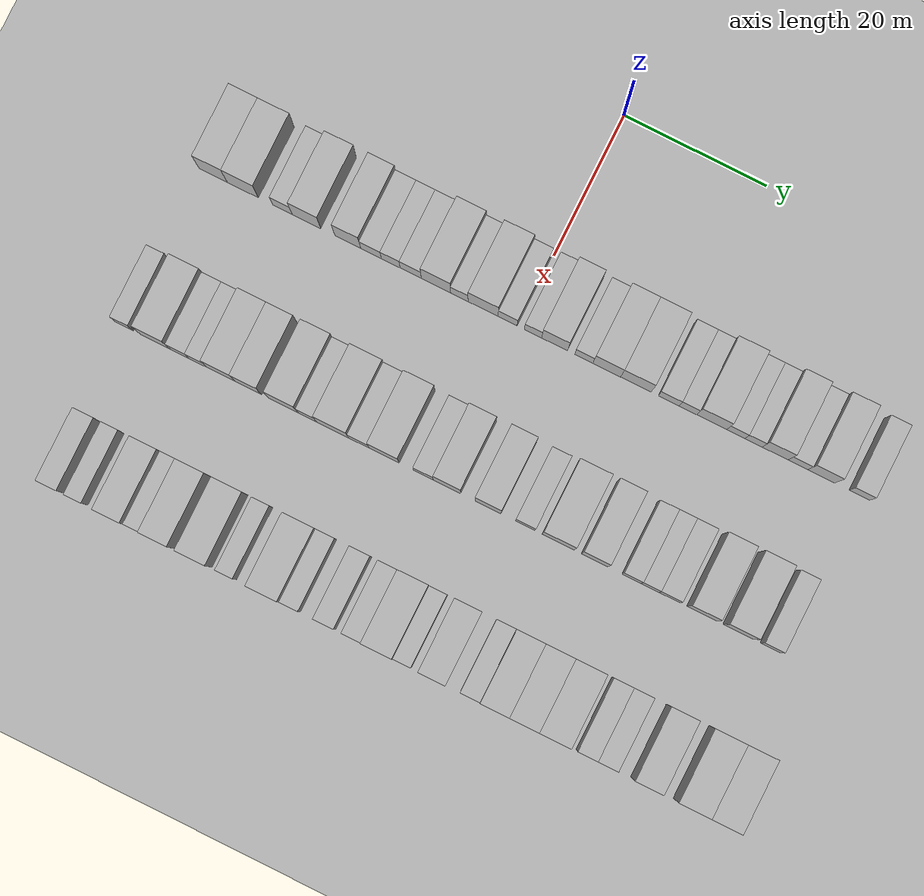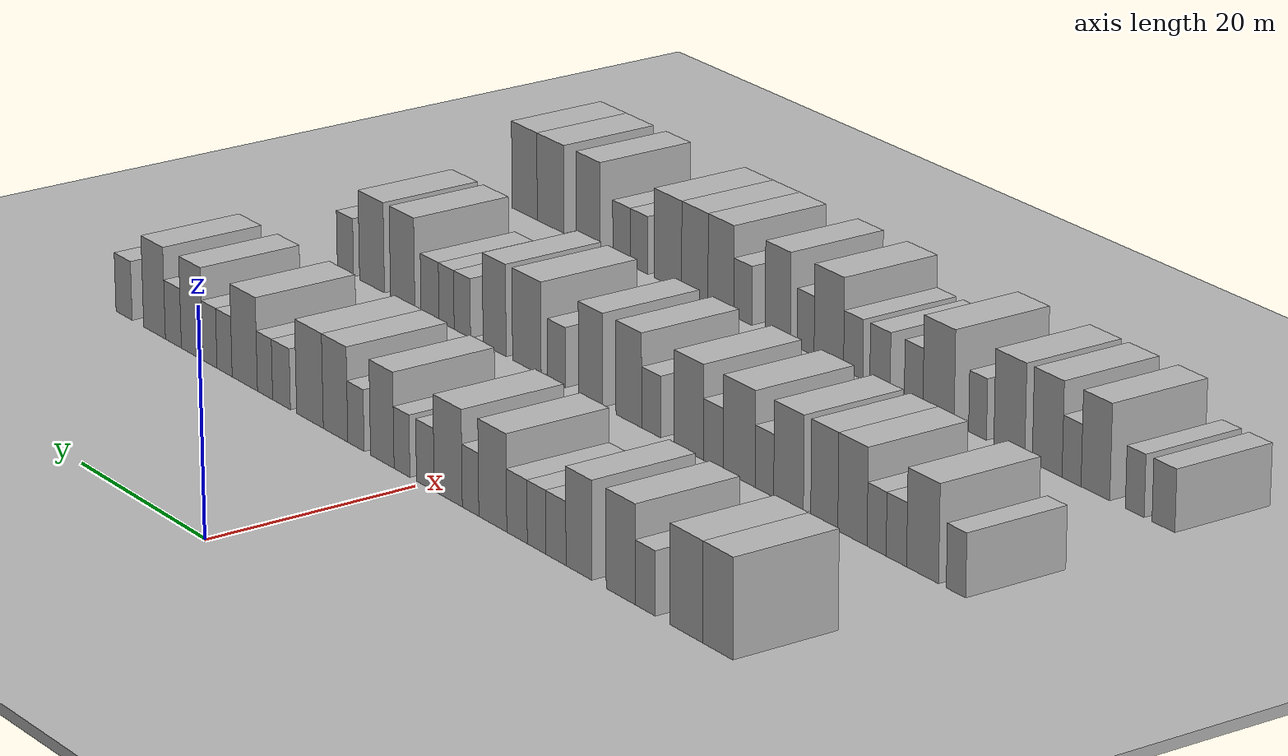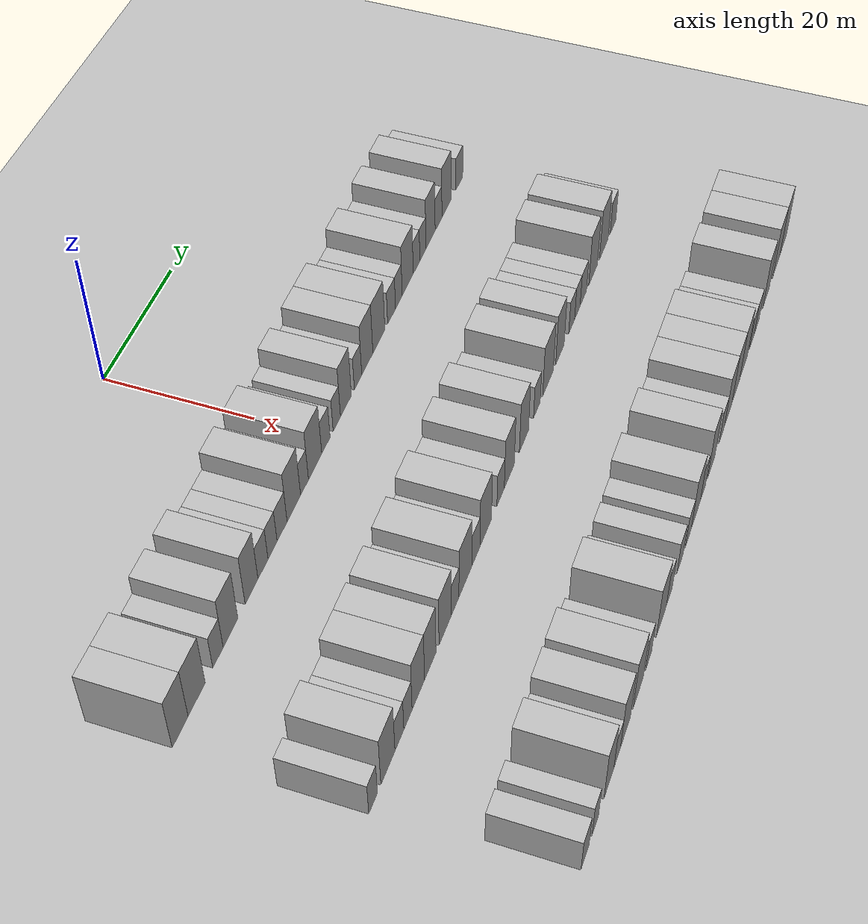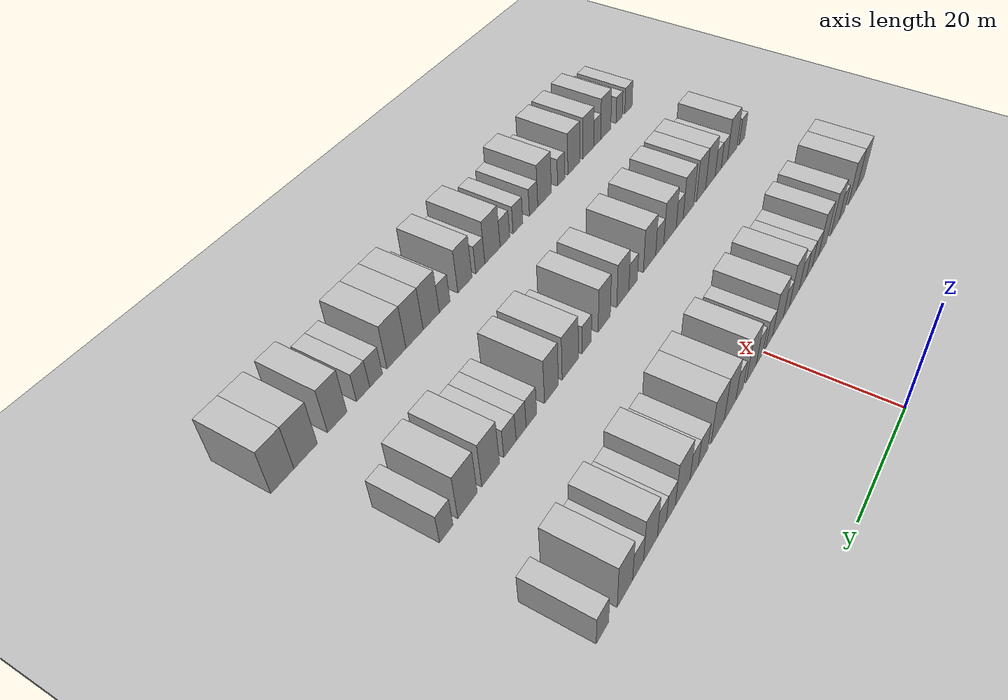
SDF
<sdf version="1.6">
 <world name="default">
  <include><name>ground_plane_1</name><uri>model://HANNAS_ground_plane</uri></include>
  <include>
   <name>ground_plane_2</name>
   <uri>model://HANNAS_ground_plane</uri>
   <pose>100 0 0  0 0 0</pose>
  </include>
  <model name="building_45">
   <static>1</static>
   <pose>25.0000 -42.8635 0 0.000000 0.000000 0.000000</pose>
   <link name="link">
    <pose>0 0 4.50 0 0 0</pose>
    <collision name="collision"><geometry><box><size>10.0000 3.9798 9.0000</size></box></geometry></collision>
    <visual name="visual">
     <cast_shadows>0</cast_shadows>
     <geometry><box><size>10.0000 3.9798 9.0000</size></box></geometry>
     <material>
      <script>
       <uri>model://HANNAS_wall/materials/scripts</uri>
       <uri>model://HANNAS_wall/materials/textures</uri>
       <name>vrc/HANNAS_wall</name>
      </script>
     </material>
    </visual>
   </link>
  </model>
  <model name="building_46">
   <static>1</static>
   <pose>25.0000 -38.6857 0 0.000000 0.000000 0.000000</pose>
   <link name="link">
    <pose>0 0 4.50 0 0 0</pose>
    <collision name="collision"><geometry><box><size>10.0000 4.3758 9.0000</size></box></geometry></collision>
    <visual name="visual">
     <cast_shadows>0</cast_shadows>
     <geometry><box><size>10.0000 4.3758 9.0000</size></box></geometry>
     <material>
      <script>
       <uri>model://HANNAS_wall/materials/scripts</uri>
       <uri>model://HANNAS_wall/materials/textures</uri>
       <name>vrc/HANNAS_wall</name>
      </script>
     </material>
    </visual>
   </link>
  </model>
  <model name="building_47">
   <static>1</static>
   <pose>25.0000 -33.1156 0 0.000000 0.000000 0.000000</pose>
   <link name="link">
    <pose>0 0 3.00 0 0 0</pose>
    <collision name="collision"><geometry><box><size>10.0000 2.7645 6.0000</size></box></geometry></collision>
    <visual name="visual">
     <cast_shadows>0</cast_shadows>
     <geometry><box><size>10.0000 2.7645 6.0000</size></box></geometry>
     <material>
      <script>
       <uri>model://HANNAS_wall/materials/scripts</uri>
       <uri>model://HANNAS_wall/materials/textures</uri>
       <name>vrc/HANNAS_wall</name>
      </script>
     </material>
    </visual>
   </link>
  </model>
  <model name="building_48">
   <static>1</static>
   <pose>25.0000 -29.7334 0 0.000000 0.000000 0.000000</pose>
   <link name="link">
    <pose>0 0 4.50 0 0 0</pose>
    <collision name="collision"><geometry><box><size>10.0000 3.9999 9.0000</size></box></geometry></collision>
    <visual name="visual">
     <cast_shadows>0</cast_shadows>
     <geometry><box><size>10.0000 3.9999 9.0000</size></box></geometry>
     <material>
      <script>
       <uri>model://HANNAS_wall/materials/scripts</uri>
       <uri>model://HANNAS_wall/materials/textures</uri>
       <name>vrc/HANNAS_wall</name>
      </script>
     </material>
    </visual>
   </link>
  </model>
  <model name="building_49">
   <static>1</static>
   <pose>25.0000 -23.9194 0 0.000000 0.000000 0.000000</pose>
   <link name="link">
    <pose>0 0 4.50 0 0 0</pose>
    <collision name="collision"><geometry><box><size>10.0000 3.6281 9.0000</size></box></geometry></collision>
    <visual name="visual">
     <cast_shadows>0</cast_shadows>
     <geometry><box><size>10.0000 3.6281 9.0000</size></box></geometry>
     <material>
      <script>
       <uri>model://HANNAS_wall/materials/scripts</uri>
       <uri>model://HANNAS_wall/materials/textures</uri>
       <name>vrc/HANNAS_wall</name>
      </script>
     </material>
    </visual>
   </link>
  </model>
  <model name="building_50">
   <static>1</static>
   <pose>25.0000 -20.6621 0 0.000000 0.000000 0.000000</pose>
   <link name="link">
    <pose>0 0 3.00 0 0 0</pose>
    <collision name="collision"><geometry><box><size>10.0000 2.8865 6.0000</size></box></geometry></collision>
    <visual name="visual">
     <cast_shadows>0</cast_shadows>
     <geometry><box><size>10.0000 2.8865 6.0000</size></box></geometry>
     <material>
      <script>
       <uri>model://HANNAS_wall/materials/scripts</uri>
       <uri>model://HANNAS_wall/materials/textures</uri>
       <name>vrc/HANNAS_wall</name>
      </script>
     </material>
    </visual>
   </link>
  </model>
  <model name="building_51">
   <static>1</static>
   <pose>25.0000 -17.8971 0 0.000000 0.000000 0.000000</pose>
   <link name="link">
    <pose>0 0 3.00 0 0 0</pose>
    <collision name="collision"><geometry><box><size>10.0000 2.6434 6.0000</size></box></geometry></collision>
    <visual name="visual">
     <cast_shadows>0</cast_shadows>
     <geometry><box><size>10.0000 2.6434 6.0000</size></box></geometry>
     <material>
      <script>
       <uri>model://HANNAS_wall/materials/scripts</uri>
       <uri>model://HANNAS_wall/materials/textures</uri>
       <name>vrc/HANNAS_wall</name>
      </script>
     </material>
    </visual>
   </link>
  </model>
  <model name="building_52">
   <static>1</static>
   <pose>25.0000 -15.0894 0 0.000000 0.000000 0.000000</pose>
   <link name="link">
    <pose>0 0 3.00 0 0 0</pose>
    <collision name="collision"><geometry><box><size>10.0000 2.9720 6.0000</size></box></geometry></collision>
    <visual name="visual">
     <cast_shadows>0</cast_shadows>
     <geometry><box><size>10.0000 2.9720 6.0000</size></box></geometry>
     <material>
      <script>
       <uri>model://HANNAS_wall/materials/scripts</uri>
       <uri>model://HANNAS_wall/materials/textures</uri>
       <name>vrc/HANNAS_wall</name>
      </script>
     </material>
    </visual>
   </link>
  </model>
  <model name="building_53">
   <static>1</static>
   <pose>25.0000 -11.5580 0 0.000000 0.000000 0.000000</pose>
   <link name="link">
    <pose>0 0 4.50 0 0 0</pose>
    <collision name="collision"><geometry><box><size>10.0000 4.0909 9.0000</size></box></geometry></collision>
    <visual name="visual">
     <cast_shadows>0</cast_shadows>
     <geometry><box><size>10.0000 4.0909 9.0000</size></box></geometry>
     <material>
      <script>
       <uri>model://HANNAS_wall/materials/scripts</uri>
       <uri>model://HANNAS_wall/materials/textures</uri>
       <name>vrc/HANNAS_wall</name>
      </script>
     </material>
    </visual>
   </link>
  </model>
  <model name="building_54">
   <static>1</static>
   <pose>25.0000 -8.2901 0 0.000000 0.000000 0.000000</pose>
   <link name="link">
    <pose>0 0 3.00 0 0 0</pose>
    <collision name="collision"><geometry><box><size>10.0000 2.4448 6.0000</size></box></geometry></collision>
    <visual name="visual">
     <cast_shadows>0</cast_shadows>
     <geometry><box><size>10.0000 2.4448 6.0000</size></box></geometry>
     <material>
      <script>
       <uri>model://HANNAS_wall/materials/scripts</uri>
       <uri>model://HANNAS_wall/materials/textures</uri>
       <name>vrc/HANNAS_wall</name>
      </script>
     </material>
    </visual>
   </link>
  </model>
  <model name="building_55">
   <static>1</static>
   <pose>25.0000 -4.9707 0 0.000000 0.000000 0.000000</pose>
   <link name="link">
    <pose>0 0 4.50 0 0 0</pose>
    <collision name="collision"><geometry><box><size>10.0000 4.1941 9.0000</size></box></geometry></collision>
    <visual name="visual">
     <cast_shadows>0</cast_shadows>
     <geometry><box><size>10.0000 4.1941 9.0000</size></box></geometry>
     <material>
      <script>
       <uri>model://HANNAS_wall/materials/scripts</uri>
       <uri>model://HANNAS_wall/materials/textures</uri>
       <name>vrc/HANNAS_wall</name>
      </script>
     </material>
    </visual>
   </link>
  </model>
  <model name="building_56">
   <static>1</static>
   <pose>25.0000 -1.5361 0 0.000000 0.000000 0.000000</pose>
   <link name="link">
    <pose>0 0 3.00 0 0 0</pose>
    <collision name="collision"><geometry><box><size>10.0000 2.6751 6.0000</size></box></geometry></collision>
    <visual name="visual">
     <cast_shadows>0</cast_shadows>
     <geometry><box><size>10.0000 2.6751 6.0000</size></box></geometry>
     <material>
      <script>
       <uri>model://HANNAS_wall/materials/scripts</uri>
       <uri>model://HANNAS_wall/materials/textures</uri>
       <name>vrc/HANNAS_wall</name>
      </script>
     </material>
    </visual>
   </link>
  </model>
  <model name="building_57">
   <static>1</static>
   <pose>25.0000 2.0091 0 0.000000 0.000000 0.000000</pose>
   <link name="link">
    <pose>0 0 3.00 0 0 0</pose>
    <collision name="collision"><geometry><box><size>10.0000 2.4154 6.0000</size></box></geometry></collision>
    <visual name="visual">
     <cast_shadows>0</cast_shadows>
     <geometry><box><size>10.0000 2.4154 6.0000</size></box></geometry>
     <material>
      <script>
       <uri>model://HANNAS_wall/materials/scripts</uri>
       <uri>model://HANNAS_wall/materials/textures</uri>
       <name>vrc/HANNAS_wall</name>
      </script>
     </material>
    </visual>
   </link>
  </model>
  <model name="building_58">
   <static>1</static>
   <pose>25.0000 5.0301 0 0.000000 0.000000 0.000000</pose>
   <link name="link">
    <pose>0 0 4.50 0 0 0</pose>
    <collision name="collision"><geometry><box><size>10.0000 3.6266 9.0000</size></box></geometry></collision>
    <visual name="visual">
     <cast_shadows>0</cast_shadows>
     <geometry><box><size>10.0000 3.6266 9.0000</size></box></geometry>
     <material>
      <script>
       <uri>model://HANNAS_wall/materials/scripts</uri>
       <uri>model://HANNAS_wall/materials/textures</uri>
       <name>vrc/HANNAS_wall</name>
      </script>
     </material>
    </visual>
   </link>
  </model>
  <model name="building_59">
   <static>1</static>
   <pose>25.0000 9.1142 0 0.000000 0.000000 0.000000</pose>
   <link name="link">
    <pose>0 0 3.00 0 0 0</pose>
    <collision name="collision"><geometry><box><size>10.0000 2.5416 6.0000</size></box></geometry></collision>
    <visual name="visual">
     <cast_shadows>0</cast_shadows>
     <geometry><box><size>10.0000 2.5416 6.0000</size></box></geometry>
     <material>
      <script>
       <uri>model://HANNAS_wall/materials/scripts</uri>
       <uri>model://HANNAS_wall/materials/textures</uri>
       <name>vrc/HANNAS_wall</name>
      </script>
     </material>
    </visual>
   </link>
  </model>
  <model name="building_60">
   <static>1</static>
   <pose>25.0000 12.3199 0 0.000000 0.000000 0.000000</pose>
   <link name="link">
    <pose>0 0 4.50 0 0 0</pose>
    <collision name="collision"><geometry><box><size>10.0000 3.8697 9.0000</size></box></geometry></collision>
    <visual name="visual">
     <cast_shadows>0</cast_shadows>
     <geometry><box><size>10.0000 3.8697 9.0000</size></box></geometry>
     <material>
      <script>
       <uri>model://HANNAS_wall/materials/scripts</uri>
       <uri>model://HANNAS_wall/materials/textures</uri>
       <name>vrc/HANNAS_wall</name>
      </script>
     </material>
    </visual>
   </link>
  </model>
  <model name="building_61">
   <static>1</static>
   <pose>25.0000 16.3835 0 0.000000 0.000000 0.000000</pose>
   <link name="link">
    <pose>0 0 4.50 0 0 0</pose>
    <collision name="collision"><geometry><box><size>10.0000 4.2576 9.0000</size></box></geometry></collision>
    <visual name="visual">
     <cast_shadows>0</cast_shadows>
     <geometry><box><size>10.0000 4.2576 9.0000</size></box></geometry>
     <material>
      <script>
       <uri>model://HANNAS_wall/materials/scripts</uri>
       <uri>model://HANNAS_wall/materials/textures</uri>
       <name>vrc/HANNAS_wall</name>
      </script>
     </material>
    </visual>
   </link>
  </model>
  <model name="building_62">
   <static>1</static>
   <pose>25.0000 20.9505 0 0.000000 0.000000 0.000000</pose>
   <link name="link">
    <pose>0 0 3.00 0 0 0</pose>
    <collision name="collision"><geometry><box><size>10.0000 2.8764 6.0000</size></box></geometry></collision>
    <visual name="visual">
     <cast_shadows>0</cast_shadows>
     <geometry><box><size>10.0000 2.8764 6.0000</size></box></geometry>
     <material>
      <script>
       <uri>model://HANNAS_wall/materials/scripts</uri>
       <uri>model://HANNAS_wall/materials/textures</uri>
       <name>vrc/HANNAS_wall</name>
      </script>
     </material>
    </visual>
   </link>
  </model>
  <model name="building_63">
   <static>1</static>
   <pose>25.0000 23.6272 0 0.000000 0.000000 0.000000</pose>
   <link name="link">
    <pose>0 0 3.00 0 0 0</pose>
    <collision name="collision"><geometry><box><size>10.0000 2.4770 6.0000</size></box></geometry></collision>
    <visual name="visual">
     <cast_shadows>0</cast_shadows>
     <geometry><box><size>10.0000 2.4770 6.0000</size></box></geometry>
     <material>
      <script>
       <uri>model://HANNAS_wall/materials/scripts</uri>
       <uri>model://HANNAS_wall/materials/textures</uri>
       <name>vrc/HANNAS_wall</name>
      </script>
     </material>
    </visual>
   </link>
  </model>
  <model name="building_64">
   <static>1</static>
   <pose>25.0000 26.9529 0 0.000000 0.000000 0.000000</pose>
   <link name="link">
    <pose>0 0 4.50 0 0 0</pose>
    <collision name="collision"><geometry><box><size>10.0000 4.1743 9.0000</size></box></geometry></collision>
    <visual name="visual">
     <cast_shadows>0</cast_shadows>
     <geometry><box><size>10.0000 4.1743 9.0000</size></box></geometry>
     <material>
      <script>
       <uri>model://HANNAS_wall/materials/scripts</uri>
       <uri>model://HANNAS_wall/materials/textures</uri>
       <name>vrc/HANNAS_wall</name>
      </script>
     </material>
    </visual>
   </link>
  </model>
  <model name="building_65">
   <static>1</static>
   <pose>25.0000 30.2963 0 0.000000 0.000000 0.000000</pose>
   <link name="link">
    <pose>0 0 3.00 0 0 0</pose>
    <collision name="collision"><geometry><box><size>10.0000 2.5124 6.0000</size></box></geometry></collision>
    <visual name="visual">
     <cast_shadows>0</cast_shadows>
     <geometry><box><size>10.0000 2.5124 6.0000</size></box></geometry>
     <material>
      <script>
       <uri>model://HANNAS_wall/materials/scripts</uri>
       <uri>model://HANNAS_wall/materials/textures</uri>
       <name>vrc/HANNAS_wall</name>
      </script>
     </material>
    </visual>
   </link>
  </model>
  <model name="building_66">
   <static>1</static>
   <pose>25.0000 32.7571 0 0.000000 0.000000 0.000000</pose>
   <link name="link">
    <pose>0 0 3.00 0 0 0</pose>
    <collision name="collision"><geometry><box><size>10.0000 2.4093 6.0000</size></box></geometry></collision>
    <visual name="visual">
     <cast_shadows>0</cast_shadows>
     <geometry><box><size>10.0000 2.4093 6.0000</size></box></geometry>
     <material>
      <script>
       <uri>model://HANNAS_wall/materials/scripts</uri>
       <uri>model://HANNAS_wall/materials/textures</uri>
       <name>vrc/HANNAS_wall</name>
      </script>
     </material>
    </visual>
   </link>
  </model>
  <model name="building_67">
   <static>1</static>
   <pose>25.0000 35.7654 0 0.000000 0.000000 0.000000</pose>
   <link name="link">
    <pose>0 0 4.50 0 0 0</pose>
    <collision name="collision"><geometry><box><size>10.0000 3.6071 9.0000</size></box></geometry></collision>
    <visual name="visual">
     <cast_shadows>0</cast_shadows>
     <geometry><box><size>10.0000 3.6071 9.0000</size></box></geometry>
     <material>
      <script>
       <uri>model://HANNAS_wall/materials/scripts</uri>
       <uri>model://HANNAS_wall/materials/textures</uri>
       <name>vrc/HANNAS_wall</name>
      </script>
     </material>
    </visual>
   </link>
  </model>
  <model name="building_68">
   <static>1</static>
   <pose>25.0000 38.9312 0 0.000000 0.000000 0.000000</pose>
   <link name="link">
    <pose>0 0 3.00 0 0 0</pose>
    <collision name="collision"><geometry><box><size>10.0000 2.7245 6.0000</size></box></geometry></collision>
    <visual name="visual">
     <cast_shadows>0</cast_shadows>
     <geometry><box><size>10.0000 2.7245 6.0000</size></box></geometry>
     <material>
      <script>
       <uri>model://HANNAS_wall/materials/scripts</uri>
       <uri>model://HANNAS_wall/materials/textures</uri>
       <name>vrc/HANNAS_wall</name>
      </script>
     </material>
    </visual>
   </link>
  </model>
  <model name="building_69">
   <static>1</static>
   <pose>25.0000 42.1606 0 0.000000 0.000000 0.000000</pose>
   <link name="link">
    <pose>0 0 4.50 0 0 0</pose>
    <collision name="collision"><geometry><box><size>10.0000 3.7345 9.0000</size></box></geometry></collision>
    <visual name="visual">
     <cast_shadows>0</cast_shadows>
     <geometry><box><size>10.0000 3.7345 9.0000</size></box></geometry>
     <material>
      <script>
       <uri>model://HANNAS_wall/materials/scripts</uri>
       <uri>model://HANNAS_wall/materials/textures</uri>
       <name>vrc/HANNAS_wall</name>
      </script>
     </material>
    </visual>
   </link>
  </model>
  <model name="building_70">
   <static>1</static>
   <pose>25.0000 47.4446 0 0.000000 0.000000 0.000000</pose>
   <link name="link">
    <pose>0 0 3.00 0 0 0</pose>
    <collision name="collision"><geometry><box><size>10.0000 2.8334 6.0000</size></box></geometry></collision>
    <visual name="visual">
     <cast_shadows>0</cast_shadows>
     <geometry><box><size>10.0000 2.8334 6.0000</size></box></geometry>
     <material>
      <script>
       <uri>model://HANNAS_wall/materials/scripts</uri>
       <uri>model://HANNAS_wall/materials/textures</uri>
       <name>vrc/HANNAS_wall</name>
      </script>
     </material>
    </visual>
   </link>
  </model>
  <model name="building_177">
   <static>1</static>
   <pose>47.0000 -44.1756 0 0.000000 0.000000 0.000000</pose>
   <link name="link">
    <pose>0 0 3.00 0 0 0</pose>
    <collision name="collision"><geometry><box><size>10.0000 2.4944 6.0000</size></box></geometry></collision>
    <visual name="visual">
     <cast_shadows>0</cast_shadows>
     <geometry><box><size>10.0000 2.4944 6.0000</size></box></geometry>
     <material>
      <script>
       <uri>model://HANNAS_wall/materials/scripts</uri>
       <uri>model://HANNAS_wall/materials/textures</uri>
       <name>vrc/HANNAS_wall</name>
      </script>
     </material>
    </visual>
   </link>
  </model>
  <model name="building_178">
   <static>1</static>
   <pose>47.0000 -39.8430 0 0.000000 0.000000 0.000000</pose>
   <link name="link">
    <pose>0 0 4.50 0 0 0</pose>
    <collision name="collision"><geometry><box><size>10.0000 4.1708 9.0000</size></box></geometry></collision>
    <visual name="visual">
     <cast_shadows>0</cast_shadows>
     <geometry><box><size>10.0000 4.1708 9.0000</size></box></geometry>
     <material>
      <script>
       <uri>model://HANNAS_wall/materials/scripts</uri>
       <uri>model://HANNAS_wall/materials/textures</uri>
       <name>vrc/HANNAS_wall</name>
      </script>
     </material>
    </visual>
   </link>
  </model>
  <model name="building_179">
   <static>1</static>
   <pose>47.0000 -36.4113 0 0.000000 0.000000 0.000000</pose>
   <link name="link">
    <pose>0 0 3.00 0 0 0</pose>
    <collision name="collision"><geometry><box><size>10.0000 2.6926 6.0000</size></box></geometry></collision>
    <visual name="visual">
     <cast_shadows>0</cast_shadows>
     <geometry><box><size>10.0000 2.6926 6.0000</size></box></geometry>
     <material>
      <script>
       <uri>model://HANNAS_wall/materials/scripts</uri>
       <uri>model://HANNAS_wall/materials/textures</uri>
       <name>vrc/HANNAS_wall</name>
      </script>
     </material>
    </visual>
   </link>
  </model>
  <model name="building_180">
   <static>1</static>
   <pose>47.0000 -33.7956 0 0.000000 0.000000 0.000000</pose>
   <link name="link">
    <pose>0 0 3.00 0 0 0</pose>
    <collision name="collision"><geometry><box><size>10.0000 2.5389 6.0000</size></box></geometry></collision>
    <visual name="visual">
     <cast_shadows>0</cast_shadows>
     <geometry><box><size>10.0000 2.5389 6.0000</size></box></geometry>
     <material>
      <script>
       <uri>model://HANNAS_wall/materials/scripts</uri>
       <uri>model://HANNAS_wall/materials/textures</uri>
       <name>vrc/HANNAS_wall</name>
      </script>
     </material>
    </visual>
   </link>
  </model>
  <model name="building_181">
   <static>1</static>
   <pose>47.0000 -30.5617 0 0.000000 0.000000 0.000000</pose>
   <link name="link">
    <pose>0 0 4.50 0 0 0</pose>
    <collision name="collision"><geometry><box><size>10.0000 3.9287 9.0000</size></box></geometry></collision>
    <visual name="visual">
     <cast_shadows>0</cast_shadows>
     <geometry><box><size>10.0000 3.9287 9.0000</size></box></geometry>
     <material>
      <script>
       <uri>model://HANNAS_wall/materials/scripts</uri>
       <uri>model://HANNAS_wall/materials/textures</uri>
       <name>vrc/HANNAS_wall</name>
      </script>
     </material>
    </visual>
   </link>
  </model>
  <model name="building_182">
   <static>1</static>
   <pose>47.0000 -26.7581 0 0.000000 0.000000 0.000000</pose>
   <link name="link">
    <pose>0 0 4.50 0 0 0</pose>
    <collision name="collision"><geometry><box><size>10.0000 3.6786 9.0000</size></box></geometry></collision>
    <visual name="visual">
     <cast_shadows>0</cast_shadows>
     <geometry><box><size>10.0000 3.6786 9.0000</size></box></geometry>
     <material>
      <script>
       <uri>model://HANNAS_wall/materials/scripts</uri>
       <uri>model://HANNAS_wall/materials/textures</uri>
       <name>vrc/HANNAS_wall</name>
      </script>
     </material>
    </visual>
   </link>
  </model>
  <model name="building_183">
   <static>1</static>
   <pose>47.0000 -21.8673 0 0.000000 0.000000 0.000000</pose>
   <link name="link">
    <pose>0 0 4.50 0 0 0</pose>
    <collision name="collision"><geometry><box><size>10.0000 4.1030 9.0000</size></box></geometry></collision>
    <visual name="visual">
     <cast_shadows>0</cast_shadows>
     <geometry><box><size>10.0000 4.1030 9.0000</size></box></geometry>
     <material>
      <script>
       <uri>model://HANNAS_wall/materials/scripts</uri>
       <uri>model://HANNAS_wall/materials/textures</uri>
       <name>vrc/HANNAS_wall</name>
      </script>
     </material>
    </visual>
   </link>
  </model>
  <model name="building_184">
   <static>1</static>
   <pose>47.0000 -18.5190 0 0.000000 0.000000 0.000000</pose>
   <link name="link">
    <pose>0 0 3.00 0 0 0</pose>
    <collision name="collision"><geometry><box><size>10.0000 2.5936 6.0000</size></box></geometry></collision>
    <visual name="visual">
     <cast_shadows>0</cast_shadows>
     <geometry><box><size>10.0000 2.5936 6.0000</size></box></geometry>
     <material>
      <script>
       <uri>model://HANNAS_wall/materials/scripts</uri>
       <uri>model://HANNAS_wall/materials/textures</uri>
       <name>vrc/HANNAS_wall</name>
      </script>
     </material>
    </visual>
   </link>
  </model>
  <model name="building_185">
   <static>1</static>
   <pose>47.0000 -14.9754 0 0.000000 0.000000 0.000000</pose>
   <link name="link">
    <pose>0 0 4.50 0 0 0</pose>
    <collision name="collision"><geometry><box><size>10.0000 4.4936 9.0000</size></box></geometry></collision>
    <visual name="visual">
     <cast_shadows>0</cast_shadows>
     <geometry><box><size>10.0000 4.4936 9.0000</size></box></geometry>
     <material>
      <script>
       <uri>model://HANNAS_wall/materials/scripts</uri>
       <uri>model://HANNAS_wall/materials/textures</uri>
       <name>vrc/HANNAS_wall</name>
      </script>
     </material>
    </visual>
   </link>
  </model>
  <model name="building_186">
   <static>1</static>
   <pose>47.0000 -11.3066 0 0.000000 0.000000 0.000000</pose>
   <link name="link">
    <pose>0 0 3.00 0 0 0</pose>
    <collision name="collision"><geometry><box><size>10.0000 2.8439 6.0000</size></box></geometry></collision>
    <visual name="visual">
     <cast_shadows>0</cast_shadows>
     <geometry><box><size>10.0000 2.8439 6.0000</size></box></geometry>
     <material>
      <script>
       <uri>model://HANNAS_wall/materials/scripts</uri>
       <uri>model://HANNAS_wall/materials/textures</uri>
       <name>vrc/HANNAS_wall</name>
      </script>
     </material>
    </visual>
   </link>
  </model>
  <model name="building_187">
   <static>1</static>
   <pose>47.0000 -7.7901 0 0.000000 0.000000 0.000000</pose>
   <link name="link">
    <pose>0 0 4.50 0 0 0</pose>
    <collision name="collision"><geometry><box><size>10.0000 4.1893 9.0000</size></box></geometry></collision>
    <visual name="visual">
     <cast_shadows>0</cast_shadows>
     <geometry><box><size>10.0000 4.1893 9.0000</size></box></geometry>
     <material>
      <script>
       <uri>model://HANNAS_wall/materials/scripts</uri>
       <uri>model://HANNAS_wall/materials/textures</uri>
       <name>vrc/HANNAS_wall</name>
      </script>
     </material>
    </visual>
   </link>
  </model>
  <model name="building_188">
   <static>1</static>
   <pose>47.0000 -2.3059 0 0.000000 0.000000 0.000000</pose>
   <link name="link">
    <pose>0 0 3.00 0 0 0</pose>
    <collision name="collision"><geometry><box><size>10.0000 2.7791 6.0000</size></box></geometry></collision>
    <visual name="visual">
     <cast_shadows>0</cast_shadows>
     <geometry><box><size>10.0000 2.7791 6.0000</size></box></geometry>
     <material>
      <script>
       <uri>model://HANNAS_wall/materials/scripts</uri>
       <uri>model://HANNAS_wall/materials/textures</uri>
       <name>vrc/HANNAS_wall</name>
      </script>
     </material>
    </visual>
   </link>
  </model>
  <model name="building_189">
   <static>1</static>
   <pose>47.0000 0.9768 0 0.000000 0.000000 0.000000</pose>
   <link name="link">
    <pose>0 0 4.50 0 0 0</pose>
    <collision name="collision"><geometry><box><size>10.0000 3.7861 9.0000</size></box></geometry></collision>
    <visual name="visual">
     <cast_shadows>0</cast_shadows>
     <geometry><box><size>10.0000 3.7861 9.0000</size></box></geometry>
     <material>
      <script>
       <uri>model://HANNAS_wall/materials/scripts</uri>
       <uri>model://HANNAS_wall/materials/textures</uri>
       <name>vrc/HANNAS_wall</name>
      </script>
     </material>
    </visual>
   </link>
  </model>
  <model name="building_190">
   <static>1</static>
   <pose>47.0000 6.6824 0 0.000000 0.000000 0.000000</pose>
   <link name="link">
    <pose>0 0 4.50 0 0 0</pose>
    <collision name="collision"><geometry><box><size>10.0000 3.6252 9.0000</size></box></geometry></collision>
    <visual name="visual">
     <cast_shadows>0</cast_shadows>
     <geometry><box><size>10.0000 3.6252 9.0000</size></box></geometry>
     <material>
      <script>
       <uri>model://HANNAS_wall/materials/scripts</uri>
       <uri>model://HANNAS_wall/materials/textures</uri>
       <name>vrc/HANNAS_wall</name>
      </script>
     </material>
    </visual>
   </link>
  </model>
  <model name="building_191">
   <static>1</static>
   <pose>47.0000 11.8528 0 0.000000 0.000000 0.000000</pose>
   <link name="link">
    <pose>0 0 3.00 0 0 0</pose>
    <collision name="collision"><geometry><box><size>10.0000 2.7157 6.0000</size></box></geometry></collision>
    <visual name="visual">
     <cast_shadows>0</cast_shadows>
     <geometry><box><size>10.0000 2.7157 6.0000</size></box></geometry>
     <material>
      <script>
       <uri>model://HANNAS_wall/materials/scripts</uri>
       <uri>model://HANNAS_wall/materials/textures</uri>
       <name>vrc/HANNAS_wall</name>
      </script>
     </material>
    </visual>
   </link>
  </model>
  <model name="building_192">
   <static>1</static>
   <pose>47.0000 16.4301 0 0.000000 0.000000 0.000000</pose>
   <link name="link">
    <pose>0 0 4.50 0 0 0</pose>
    <collision name="collision"><geometry><box><size>10.0000 4.4388 9.0000</size></box></geometry></collision>
    <visual name="visual">
     <cast_shadows>0</cast_shadows>
     <geometry><box><size>10.0000 4.4388 9.0000</size></box></geometry>
     <material>
      <script>
       <uri>model://HANNAS_wall/materials/scripts</uri>
       <uri>model://HANNAS_wall/materials/textures</uri>
       <name>vrc/HANNAS_wall</name>
      </script>
     </material>
    </visual>
   </link>
  </model>
  <model name="building_193">
   <static>1</static>
   <pose>47.0000 21.4659 0 0.000000 0.000000 0.000000</pose>
   <link name="link">
    <pose>0 0 4.50 0 0 0</pose>
    <collision name="collision"><geometry><box><size>10.0000 3.6328 9.0000</size></box></geometry></collision>
    <visual name="visual">
     <cast_shadows>0</cast_shadows>
     <geometry><box><size>10.0000 3.6328 9.0000</size></box></geometry>
     <material>
      <script>
       <uri>model://HANNAS_wall/materials/scripts</uri>
       <uri>model://HANNAS_wall/materials/textures</uri>
       <name>vrc/HANNAS_wall</name>
      </script>
     </material>
    </visual>
   </link>
  </model>
  <model name="building_194">
   <static>1</static>
   <pose>47.0000 26.5936 0 0.000000 0.000000 0.000000</pose>
   <link name="link">
    <pose>0 0 3.00 0 0 0</pose>
    <collision name="collision"><geometry><box><size>10.0000 2.6227 6.0000</size></box></geometry></collision>
    <visual name="visual">
     <cast_shadows>0</cast_shadows>
     <geometry><box><size>10.0000 2.6227 6.0000</size></box></geometry>
     <material>
      <script>
       <uri>model://HANNAS_wall/materials/scripts</uri>
       <uri>model://HANNAS_wall/materials/textures</uri>
       <name>vrc/HANNAS_wall</name>
      </script>
     </material>
    </visual>
   </link>
  </model>
  <model name="building_195">
   <static>1</static>
   <pose>47.0000 29.1236 0 0.000000 0.000000 0.000000</pose>
   <link name="link">
    <pose>0 0 3.00 0 0 0</pose>
    <collision name="collision"><geometry><box><size>10.0000 2.4373 6.0000</size></box></geometry></collision>
    <visual name="visual">
     <cast_shadows>0</cast_shadows>
     <geometry><box><size>10.0000 2.4373 6.0000</size></box></geometry>
     <material>
      <script>
       <uri>model://HANNAS_wall/materials/scripts</uri>
       <uri>model://HANNAS_wall/materials/textures</uri>
       <name>vrc/HANNAS_wall</name>
      </script>
     </material>
    </visual>
   </link>
  </model>
  <model name="building_196">
   <static>1</static>
   <pose>47.0000 31.8031 0 0.000000 0.000000 0.000000</pose>
   <link name="link">
    <pose>0 0 3.00 0 0 0</pose>
    <collision name="collision"><geometry><box><size>10.0000 2.9217 6.0000</size></box></geometry></collision>
    <visual name="visual">
     <cast_shadows>0</cast_shadows>
     <geometry><box><size>10.0000 2.9217 6.0000</size></box></geometry>
     <material>
      <script>
       <uri>model://HANNAS_wall/materials/scripts</uri>
       <uri>model://HANNAS_wall/materials/textures</uri>
       <name>vrc/HANNAS_wall</name>
      </script>
     </material>
    </visual>
   </link>
  </model>
  <model name="building_197">
   <static>1</static>
   <pose>47.0000 36.2678 0 0.000000 0.000000 0.000000</pose>
   <link name="link">
    <pose>0 0 4.50 0 0 0</pose>
    <collision name="collision"><geometry><box><size>10.0000 4.0077 9.0000</size></box></geometry></collision>
    <visual name="visual">
     <cast_shadows>0</cast_shadows>
     <geometry><box><size>10.0000 4.0077 9.0000</size></box></geometry>
     <material>
      <script>
       <uri>model://HANNAS_wall/materials/scripts</uri>
       <uri>model://HANNAS_wall/materials/textures</uri>
       <name>vrc/HANNAS_wall</name>
      </script>
     </material>
    </visual>
   </link>
  </model>
  <model name="building_198">
   <static>1</static>
   <pose>47.0000 41.3485 0 0.000000 0.000000 0.000000</pose>
   <link name="link">
    <pose>0 0 4.50 0 0 0</pose>
    <collision name="collision"><geometry><box><size>10.0000 4.1537 9.0000</size></box></geometry></collision>
    <visual name="visual">
     <cast_shadows>0</cast_shadows>
     <geometry><box><size>10.0000 4.1537 9.0000</size></box></geometry>
     <material>
      <script>
       <uri>model://HANNAS_wall/materials/scripts</uri>
       <uri>model://HANNAS_wall/materials/textures</uri>
       <name>vrc/HANNAS_wall</name>
      </script>
     </material>
    </visual>
   </link>
  </model>
  <model name="building_199">
   <static>1</static>
   <pose>47.0000 45.7966 0 0.000000 0.000000 0.000000</pose>
   <link name="link">
    <pose>0 0 3.00 0 0 0</pose>
    <collision name="collision"><geometry><box><size>10.0000 2.7426 6.0000</size></box></geometry></collision>
    <visual name="visual">
     <cast_shadows>0</cast_shadows>
     <geometry><box><size>10.0000 2.7426 6.0000</size></box></geometry>
     <material>
      <script>
       <uri>model://HANNAS_wall/materials/scripts</uri>
       <uri>model://HANNAS_wall/materials/textures</uri>
       <name>vrc/HANNAS_wall</name>
      </script>
     </material>
    </visual>
   </link>
  </model>
  <model name="building_296">
   <static>1</static>
   <pose>69.0000 -42.9606 0 0.000000 0.000000 0.000000</pose>
   <link name="link">
    <pose>0 0 3.00 0 0 0</pose>
    <collision name="collision"><geometry><box><size>10.0000 2.8947 6.0000</size></box></geometry></collision>
    <visual name="visual">
     <cast_shadows>0</cast_shadows>
     <geometry><box><size>10.0000 2.8947 6.0000</size></box></geometry>
     <material>
      <script>
       <uri>model://HANNAS_wall/materials/scripts</uri>
       <uri>model://HANNAS_wall/materials/textures</uri>
       <name>vrc/HANNAS_wall</name>
      </script>
     </material>
    </visual>
   </link>
  </model>
  <model name="building_297">
   <static>1</static>
   <pose>69.0000 -39.3090 0 0.000000 0.000000 0.000000</pose>
   <link name="link">
    <pose>0 0 3.00 0 0 0</pose>
    <collision name="collision"><geometry><box><size>10.0000 2.4084 6.0000</size></box></geometry></collision>
    <visual name="visual">
     <cast_shadows>0</cast_shadows>
     <geometry><box><size>10.0000 2.4084 6.0000</size></box></geometry>
     <material>
      <script>
       <uri>model://HANNAS_wall/materials/scripts</uri>
       <uri>model://HANNAS_wall/materials/textures</uri>
       <name>vrc/HANNAS_wall</name>
      </script>
     </material>
    </visual>
   </link>
  </model>
  <model name="building_298">
   <static>1</static>
   <pose>69.0000 -34.2331 0 0.000000 0.000000 0.000000</pose>
   <link name="link">
    <pose>0 0 4.50 0 0 0</pose>
    <collision name="collision"><geometry><box><size>10.0000 3.7435 9.0000</size></box></geometry></collision>
    <visual name="visual">
     <cast_shadows>0</cast_shadows>
     <geometry><box><size>10.0000 3.7435 9.0000</size></box></geometry>
     <material>
      <script>
       <uri>model://HANNAS_wall/materials/scripts</uri>
       <uri>model://HANNAS_wall/materials/textures</uri>
       <name>vrc/HANNAS_wall</name>
      </script>
     </material>
    </visual>
   </link>
  </model>
  <model name="building_299">
   <static>1</static>
   <pose>69.0000 -31.1147 0 0.000000 0.000000 0.000000</pose>
   <link name="link">
    <pose>0 0 3.00 0 0 0</pose>
    <collision name="collision"><geometry><box><size>10.0000 2.4933 6.0000</size></box></geometry></collision>
    <visual name="visual">
     <cast_shadows>0</cast_shadows>
     <geometry><box><size>10.0000 2.4933 6.0000</size></box></geometry>
     <material>
      <script>
       <uri>model://HANNAS_wall/materials/scripts</uri>
       <uri>model://HANNAS_wall/materials/textures</uri>
       <name>vrc/HANNAS_wall</name>
      </script>
     </material>
    </visual>
   </link>
  </model>
  <model name="building_300">
   <static>1</static>
   <pose>69.0000 -27.8909 0 0.000000 0.000000 0.000000</pose>
   <link name="link">
    <pose>0 0 4.50 0 0 0</pose>
    <collision name="collision"><geometry><box><size>10.0000 3.9543 9.0000</size></box></geometry></collision>
    <visual name="visual">
     <cast_shadows>0</cast_shadows>
     <geometry><box><size>10.0000 3.9543 9.0000</size></box></geometry>
     <material>
      <script>
       <uri>model://HANNAS_wall/materials/scripts</uri>
       <uri>model://HANNAS_wall/materials/textures</uri>
       <name>vrc/HANNAS_wall</name>
      </script>
     </material>
    </visual>
   </link>
  </model>
  <model name="building_301">
   <static>1</static>
   <pose>69.0000 -22.8327 0 0.000000 0.000000 0.000000</pose>
   <link name="link">
    <pose>0 0 4.50 0 0 0</pose>
    <collision name="collision"><geometry><box><size>10.0000 4.1622 9.0000</size></box></geometry></collision>
    <visual name="visual">
     <cast_shadows>0</cast_shadows>
     <geometry><box><size>10.0000 4.1622 9.0000</size></box></geometry>
     <material>
      <script>
       <uri>model://HANNAS_wall/materials/scripts</uri>
       <uri>model://HANNAS_wall/materials/textures</uri>
       <name>vrc/HANNAS_wall</name>
      </script>
     </material>
    </visual>
   </link>
  </model>
  <model name="building_302">
   <static>1</static>
   <pose>69.0000 -18.5303 0 0.000000 0.000000 0.000000</pose>
   <link name="link">
    <pose>0 0 3.00 0 0 0</pose>
    <collision name="collision"><geometry><box><size>10.0000 2.4427 6.0000</size></box></geometry></collision>
    <visual name="visual">
     <cast_shadows>0</cast_shadows>
     <geometry><box><size>10.0000 2.4427 6.0000</size></box></geometry>
     <material>
      <script>
       <uri>model://HANNAS_wall/materials/scripts</uri>
       <uri>model://HANNAS_wall/materials/textures</uri>
       <name>vrc/HANNAS_wall</name>
      </script>
     </material>
    </visual>
   </link>
  </model>
  <model name="building_303">
   <static>1</static>
   <pose>69.0000 -13.1456 0 0.000000 0.000000 0.000000</pose>
   <link name="link">
    <pose>0 0 4.50 0 0 0</pose>
    <collision name="collision"><geometry><box><size>10.0000 4.3266 9.0000</size></box></geometry></collision>
    <visual name="visual">
     <cast_shadows>0</cast_shadows>
     <geometry><box><size>10.0000 4.3266 9.0000</size></box></geometry>
     <material>
      <script>
       <uri>model://HANNAS_wall/materials/scripts</uri>
       <uri>model://HANNAS_wall/materials/textures</uri>
       <name>vrc/HANNAS_wall</name>
      </script>
     </material>
    </visual>
   </link>
  </model>
  <model name="building_304">
   <static>1</static>
   <pose>69.0000 -9.6791 0 0.000000 0.000000 0.000000</pose>
   <link name="link">
    <pose>0 0 3.00 0 0 0</pose>
    <collision name="collision"><geometry><box><size>10.0000 2.6064 6.0000</size></box></geometry></collision>
    <visual name="visual">
     <cast_shadows>0</cast_shadows>
     <geometry><box><size>10.0000 2.6064 6.0000</size></box></geometry>
     <material>
      <script>
       <uri>model://HANNAS_wall/materials/scripts</uri>
       <uri>model://HANNAS_wall/materials/textures</uri>
       <name>vrc/HANNAS_wall</name>
      </script>
     </material>
    </visual>
   </link>
  </model>
  <model name="building_305">
   <static>1</static>
   <pose>69.0000 -4.9325 0 0.000000 0.000000 0.000000</pose>
   <link name="link">
    <pose>0 0 3.00 0 0 0</pose>
    <collision name="collision"><geometry><box><size>10.0000 2.8867 6.0000</size></box></geometry></collision>
    <visual name="visual">
     <cast_shadows>0</cast_shadows>
     <geometry><box><size>10.0000 2.8867 6.0000</size></box></geometry>
     <material>
      <script>
       <uri>model://HANNAS_wall/materials/scripts</uri>
       <uri>model://HANNAS_wall/materials/textures</uri>
       <name>vrc/HANNAS_wall</name>
      </script>
     </material>
    </visual>
   </link>
  </model>
  <model name="building_306">
   <static>1</static>
   <pose>69.0000 -1.1043 0 0.000000 0.000000 0.000000</pose>
   <link name="link">
    <pose>0 0 3.00 0 0 0</pose>
    <collision name="collision"><geometry><box><size>10.0000 2.7697 6.0000</size></box></geometry></collision>
    <visual name="visual">
     <cast_shadows>0</cast_shadows>
     <geometry><box><size>10.0000 2.7697 6.0000</size></box></geometry>
     <material>
      <script>
       <uri>model://HANNAS_wall/materials/scripts</uri>
       <uri>model://HANNAS_wall/materials/textures</uri>
       <name>vrc/HANNAS_wall</name>
      </script>
     </material>
    </visual>
   </link>
  </model>
  <model name="building_307">
   <static>1</static>
   <pose>69.0000 2.4243 0 0.000000 0.000000 0.000000</pose>
   <link name="link">
    <pose>0 0 4.50 0 0 0</pose>
    <collision name="collision"><geometry><box><size>10.0000 4.2875 9.0000</size></box></geometry></collision>
    <visual name="visual">
     <cast_shadows>0</cast_shadows>
     <geometry><box><size>10.0000 4.2875 9.0000</size></box></geometry>
     <material>
      <script>
       <uri>model://HANNAS_wall/materials/scripts</uri>
       <uri>model://HANNAS_wall/materials/textures</uri>
       <name>vrc/HANNAS_wall</name>
      </script>
     </material>
    </visual>
   </link>
  </model>
  <model name="building_308">
   <static>1</static>
   <pose>69.0000 5.8132 0 0.000000 0.000000 0.000000</pose>
   <link name="link">
    <pose>0 0 3.00 0 0 0</pose>
    <collision name="collision"><geometry><box><size>10.0000 2.4902 6.0000</size></box></geometry></collision>
    <visual name="visual">
     <cast_shadows>0</cast_shadows>
     <geometry><box><size>10.0000 2.4902 6.0000</size></box></geometry>
     <material>
      <script>
       <uri>model://HANNAS_wall/materials/scripts</uri>
       <uri>model://HANNAS_wall/materials/textures</uri>
       <name>vrc/HANNAS_wall</name>
      </script>
     </material>
    </visual>
   </link>
  </model>
  <model name="building_309">
   <static>1</static>
   <pose>69.0000 9.9305 0 0.000000 0.000000 0.000000</pose>
   <link name="link">
    <pose>0 0 4.50 0 0 0</pose>
    <collision name="collision"><geometry><box><size>10.0000 3.7444 9.0000</size></box></geometry></collision>
    <visual name="visual">
     <cast_shadows>0</cast_shadows>
     <geometry><box><size>10.0000 3.7444 9.0000</size></box></geometry>
     <material>
      <script>
       <uri>model://HANNAS_wall/materials/scripts</uri>
       <uri>model://HANNAS_wall/materials/textures</uri>
       <name>vrc/HANNAS_wall</name>
      </script>
     </material>
    </visual>
   </link>
  </model>
  <model name="building_310">
   <static>1</static>
   <pose>69.0000 15.1529 0 0.000000 0.000000 0.000000</pose>
   <link name="link">
    <pose>0 0 3.00 0 0 0</pose>
    <collision name="collision"><geometry><box><size>10.0000 2.7005 6.0000</size></box></geometry></collision>
    <visual name="visual">
     <cast_shadows>0</cast_shadows>
     <geometry><box><size>10.0000 2.7005 6.0000</size></box></geometry>
     <material>
      <script>
       <uri>model://HANNAS_wall/materials/scripts</uri>
       <uri>model://HANNAS_wall/materials/textures</uri>
       <name>vrc/HANNAS_wall</name>
      </script>
     </material>
    </visual>
   </link>
  </model>
  <model name="building_311">
   <static>1</static>
   <pose>69.0000 18.4785 0 0.000000 0.000000 0.000000</pose>
   <link name="link">
    <pose>0 0 4.50 0 0 0</pose>
    <collision name="collision"><geometry><box><size>10.0000 3.9506 9.0000</size></box></geometry></collision>
    <visual name="visual">
     <cast_shadows>0</cast_shadows>
     <geometry><box><size>10.0000 3.9506 9.0000</size></box></geometry>
     <material>
      <script>
       <uri>model://HANNAS_wall/materials/scripts</uri>
       <uri>model://HANNAS_wall/materials/textures</uri>
       <name>vrc/HANNAS_wall</name>
      </script>
     </material>
    </visual>
   </link>
  </model>
  <model name="building_312">
   <static>1</static>
   <pose>69.0000 22.4781 0 0.000000 0.000000 0.000000</pose>
   <link name="link">
    <pose>0 0 4.50 0 0 0</pose>
    <collision name="collision"><geometry><box><size>10.0000 4.0486 9.0000</size></box></geometry></collision>
    <visual name="visual">
     <cast_shadows>0</cast_shadows>
     <geometry><box><size>10.0000 4.0486 9.0000</size></box></geometry>
     <material>
      <script>
       <uri>model://HANNAS_wall/materials/scripts</uri>
       <uri>model://HANNAS_wall/materials/textures</uri>
       <name>vrc/HANNAS_wall</name>
      </script>
     </material>
    </visual>
   </link>
  </model>
  <model name="building_313">
   <static>1</static>
   <pose>69.0000 26.6514 0 0.000000 0.000000 0.000000</pose>
   <link name="link">
    <pose>0 0 4.50 0 0 0</pose>
    <collision name="collision"><geometry><box><size>10.0000 4.2982 9.0000</size></box></geometry></collision>
    <visual name="visual">
     <cast_shadows>0</cast_shadows>
     <geometry><box><size>10.0000 4.2982 9.0000</size></box></geometry>
     <material>
      <script>
       <uri>model://HANNAS_wall/materials/scripts</uri>
       <uri>model://HANNAS_wall/materials/textures</uri>
       <name>vrc/HANNAS_wall</name>
      </script>
     </material>
    </visual>
   </link>
  </model>
  <model name="building_314">
   <static>1</static>
   <pose>69.0000 31.1813 0 0.000000 0.000000 0.000000</pose>
   <link name="link">
    <pose>0 0 3.00 0 0 0</pose>
    <collision name="collision"><geometry><box><size>10.0000 2.7616 6.0000</size></box></geometry></collision>
    <visual name="visual">
     <cast_shadows>0</cast_shadows>
     <geometry><box><size>10.0000 2.7616 6.0000</size></box></geometry>
     <material>
      <script>
       <uri>model://HANNAS_wall/materials/scripts</uri>
       <uri>model://HANNAS_wall/materials/textures</uri>
       <name>vrc/HANNAS_wall</name>
      </script>
     </material>
    </visual>
   </link>
  </model>
  <model name="building_315">
   <static>1</static>
   <pose>69.0000 33.9558 0 0.000000 0.000000 0.000000</pose>
   <link name="link">
    <pose>0 0 3.00 0 0 0</pose>
    <collision name="collision"><geometry><box><size>10.0000 2.7873 6.0000</size></box></geometry></collision>
    <visual name="visual">
     <cast_shadows>0</cast_shadows>
     <geometry><box><size>10.0000 2.7873 6.0000</size></box></geometry>
     <material>
      <script>
       <uri>model://HANNAS_wall/materials/scripts</uri>
       <uri>model://HANNAS_wall/materials/textures</uri>
       <name>vrc/HANNAS_wall</name>
      </script>
     </material>
    </visual>
   </link>
  </model>
  <model name="building_316">
   <static>1</static>
   <pose>69.0000 39.2859 0 0.000000 0.000000 0.000000</pose>
   <link name="link">
    <pose>0 0 4.50 0 0 0</pose>
    <collision name="collision"><geometry><box><size>10.0000 3.8730 9.0000</size></box></geometry></collision>
    <visual name="visual">
     <cast_shadows>0</cast_shadows>
     <geometry><box><size>10.0000 3.8730 9.0000</size></box></geometry>
     <material>
      <script>
       <uri>model://HANNAS_wall/materials/scripts</uri>
       <uri>model://HANNAS_wall/materials/textures</uri>
       <name>vrc/HANNAS_wall</name>
      </script>
     </material>
    </visual>
   </link>
  </model>
  <model name="building_317">
   <static>1</static>
   <pose>69.0000 45.4255 0 0.000000 0.000000 0.000000</pose>
   <link name="link">
    <pose>0 0 4.50 0 0 0</pose>
    <collision name="collision"><geometry><box><size>10.0000 4.4061 9.0000</size></box></geometry></collision>
    <visual name="visual">
     <cast_shadows>0</cast_shadows>
     <geometry><box><size>10.0000 4.4061 9.0000</size></box></geometry>
     <material>
      <script>
       <uri>model://HANNAS_wall/materials/scripts</uri>
       <uri>model://HANNAS_wall/materials/textures</uri>
       <name>vrc/HANNAS_wall</name>
      </script>
     </material>
    </visual>
   </link>
  </model>
  <model name="building_318">
   <static>1</static>
   <pose>69.0000 49.7240 0 0.000000 0.000000 0.000000</pose>
   <link name="link">
    <pose>0 0 4.50 0 0 0</pose>
    <collision name="collision"><geometry><box><size>10.0000 4.1910 9.0000</size></box></geometry></collision>
    <visual name="visual">
     <cast_shadows>0</cast_shadows>
     <geometry><box><size>10.0000 4.1910 9.0000</size></box></geometry>
     <material>
      <script>
       <uri>model://HANNAS_wall/materials/scripts</uri>
       <uri>model://HANNAS_wall/materials/textures</uri>
       <name>vrc/HANNAS_wall</name>
      </script>
     </material>
    </visual>
   </link>
  </model>
 </world>
</sdf>
